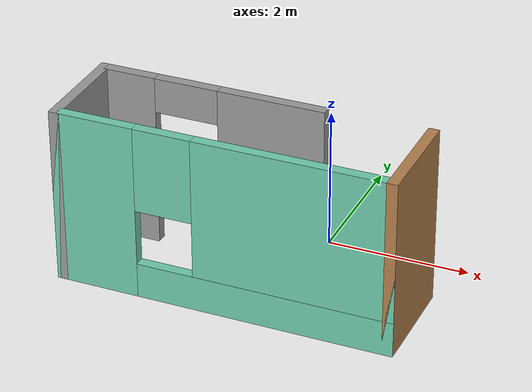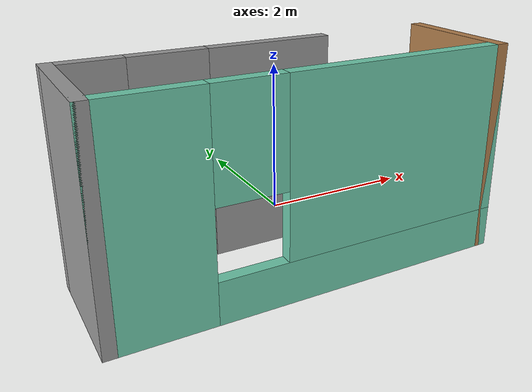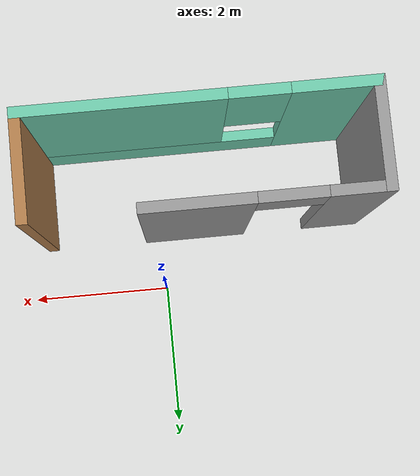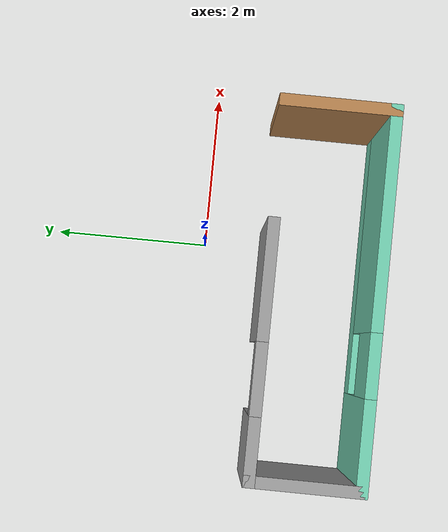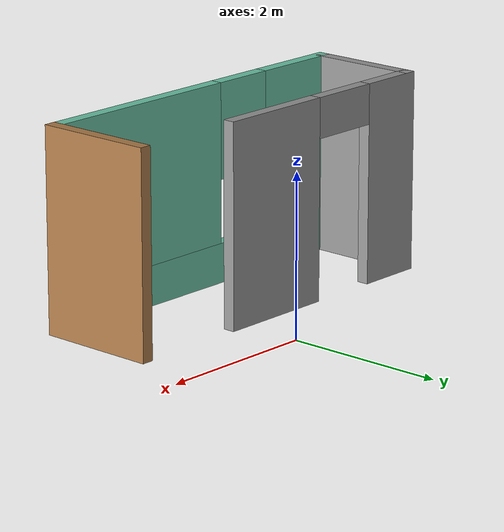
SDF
<?xml version='1.0'?>
<sdf version='1.7'>
  <model name='room'>
    <pose>-0.62 -1.1175 0 0 -0 0</pose>
    <link name='Wall_0'>
      <pose>-0.75 0.3075 0 0 -0 3.14159</pose>
      <visual name='Wall_0_Visual_0'>
        <pose>-0.8725 0 1.25 0 -0 0</pose>
        <geometry>
          <box>
            <size>1.505 0.15 2.5</size>
          </box>
        </geometry>
        <material>
          <script>
            <uri>file://media/materials/scripts/gazebo.material</uri>
            <name>Gazebo/Grey</name>
          </script>
          <ambient>1 1 1 1</ambient>
        </material>
        <meta>
          <layer>0</layer>
        </meta>
      </visual>
      <collision name='Wall_0_Collision_0'>
        <geometry>
          <box>
            <size>1.505 0.15 2.5</size>
          </box>
        </geometry>
        <pose>-0.8725 0 1.25 0 -0 0</pose>
      </collision>
      <visual name='Wall_0_Visual_1'>
        <pose>1.2025 0 1.25 0 -0 0</pose>
        <geometry>
          <box>
            <size>0.845 0.15 2.5</size>
          </box>
        </geometry>
        <material>
          <script>
            <uri>file://media/materials/scripts/gazebo.material</uri>
            <name>Gazebo/Grey</name>
          </script>
          <ambient>1 1 1 1</ambient>
        </material>
        <meta>
          <layer>0</layer>
        </meta>
      </visual>
      <collision name='Wall_0_Collision_1'>
        <geometry>
          <box>
            <size>0.845 0.15 2.5</size>
          </box>
        </geometry>
        <pose>1.2025 0 1.25 0 -0 0</pose>
      </collision>
      <visual name='Wall_0_Visual_2'>
        <pose>0.33 0 2.25 0 -0 0</pose>
        <geometry>
          <box>
            <size>0.9 0.15 0.5</size>
          </box>
        </geometry>
        <material>
          <script>
            <uri>file://media/materials/scripts/gazebo.material</uri>
            <name>Gazebo/Grey</name>
          </script>
          <ambient>1 1 1 1</ambient>
        </material>
        <meta>
          <layer>0</layer>
        </meta>
      </visual>
      <collision name='Wall_0_Collision_2'>
        <geometry>
          <box>
            <size>0.9 0.15 0.5</size>
          </box>
        </geometry>
        <pose>0.33 0 2.25 0 -0 0</pose>
      </collision>
    </link>
    <link name='Wall_1'>
      <collision name='Wall_1_Collision'>
        <geometry>
          <box>
            <size>1.5 0.15 2.5</size>
          </box>
        </geometry>
        <pose>0 0 1.25 0 -0 0</pose>
      </collision>
      <visual name='Wall_1_Visual'>
        <pose>0 0 1.25 0 -0 0</pose>
        <geometry>
          <box>
            <size>1.5 0.15 2.5</size>
          </box>
        </geometry>
        <material>
          <script>
            <uri>file://media/materials/scripts/gazebo.material</uri>
            <name>Gazebo/Grey</name>
          </script>
          <ambient>1 1 1 1</ambient>
        </material>
        <meta>
          <layer>0</layer>
        </meta>
      </visual>
      <pose>-2.3 -0.3675 0 0 -0 -1.5708</pose>
    </link>
    <link name='Wall_2'>
      <pose>0 -1.0425 0 0 -0 0</pose>
      <visual name='Wall_2_Visual_0'>
        <pose>-1.7825 0 1.25 0 -0 0</pose>
        <geometry>
          <box>
            <size>1.185 0.15 2.5</size>
          </box>
        </geometry>
        <material>
          <script>
            <uri>file://media/materials/scripts/gazebo.material</uri>
            <name>Gazebo/Grey</name>
          </script>
          <ambient>0.435294 0.796078 0.67451 1</ambient>
        </material>
        <meta>
          <layer>0</layer>
        </meta>
      </visual>
      <collision name='Wall_2_Collision_0'>
        <geometry>
          <box>
            <size>1.185 0.15 2.5</size>
          </box>
        </geometry>
        <pose>-1.7825 0 1.25 0 -0 0</pose>
      </collision>
      <visual name='Wall_2_Visual_1'>
        <pose>0.5925 0 0.25 0 -0 0</pose>
        <geometry>
          <box>
            <size>3.565 0.15 0.5</size>
          </box>
        </geometry>
        <material>
          <script>
            <uri>file://media/materials/scripts/gazebo.material</uri>
            <name>Gazebo/Grey</name>
          </script>
          <ambient>0.435294 0.796078 0.67451 1</ambient>
        </material>
        <meta>
          <layer>0</layer>
        </meta>
      </visual>
      <collision name='Wall_2_Collision_1'>
        <geometry>
          <box>
            <size>3.565 0.15 0.5</size>
          </box>
        </geometry>
        <pose>0.5925 0 0.25 0 -0 0</pose>
      </collision>
      <visual name='Wall_2_Visual_2'>
        <pose>0.9925 0 1.5 0 -0 0</pose>
        <geometry>
          <box>
            <size>2.765 0.15 2</size>
          </box>
        </geometry>
        <material>
          <script>
            <uri>file://media/materials/scripts/gazebo.material</uri>
            <name>Gazebo/Grey</name>
          </script>
          <ambient>0.435294 0.796078 0.67451 1</ambient>
        </material>
        <meta>
          <layer>0</layer>
        </meta>
      </visual>
      <collision name='Wall_2_Collision_2'>
        <geometry>
          <box>
            <size>2.765 0.15 2</size>
          </box>
        </geometry>
        <pose>0.9925 0 1.5 0 -0 0</pose>
      </collision>
      <visual name='Wall_2_Visual_3'>
        <pose>-0.79 0 1.9 0 -0 0</pose>
        <geometry>
          <box>
            <size>0.8 0.15 1.2</size>
          </box>
        </geometry>
        <material>
          <script>
            <uri>file://media/materials/scripts/gazebo.material</uri>
            <name>Gazebo/Grey</name>
          </script>
          <ambient>0.435294 0.796078 0.67451 1</ambient>
        </material>
        <meta>
          <layer>0</layer>
        </meta>
      </visual>
      <collision name='Wall_2_Collision_3'>
        <geometry>
          <box>
            <size>0.8 0.15 1.2</size>
          </box>
        </geometry>
        <pose>-0.79 0 1.9 0 -0 0</pose>
      </collision>
    </link>
    <link name='Wall_3'>
      <collision name='Wall_3_Collision'>
        <geometry>
          <box>
            <size>1.5 0.15 2.5</size>
          </box>
        </geometry>
        <pose>0 0 1.25 0 -0 0</pose>
      </collision>
      <visual name='Wall_3_Visual'>
        <pose>0 0 1.25 0 -0 0</pose>
        <geometry>
          <box>
            <size>1.5 0.15 2.5</size>
          </box>
        </geometry>
        <material>
          <script>
            <uri>file://media/materials/scripts/gazebo.material</uri>
            <name>Gazebo/Wood</name>
          </script>
          <ambient>0.435294 0.796078 0.67451 1</ambient>
        </material>
        <meta>
          <layer>0</layer>
        </meta>
      </visual>
      <pose>2.3 -0.3675 0 0 -0 1.5708</pose>
    </link>
    <static>1</static>
  </model>
</sdf>
